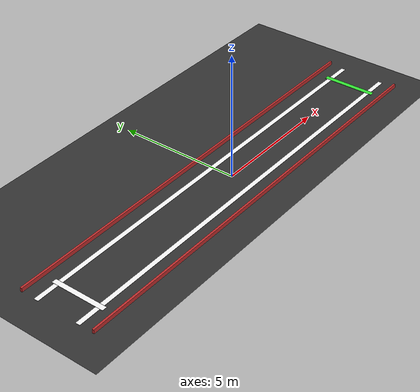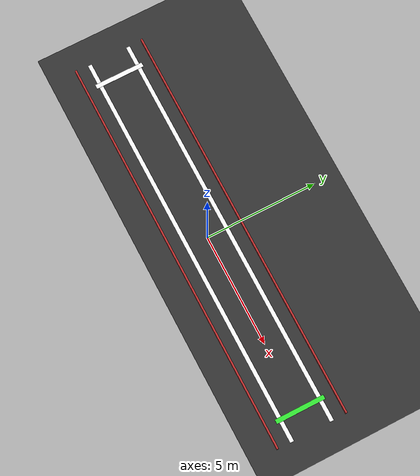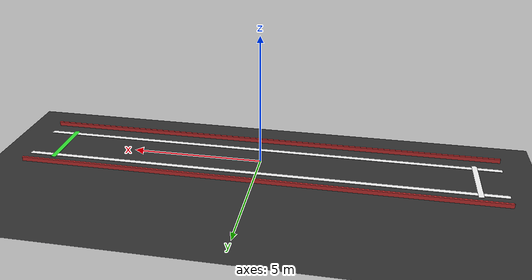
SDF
<?xml version="1.0" ?>
<sdf version='1.7'>
  <world name='lane_only_short'>
    <light name='sun' type='directional'>
      <cast_shadows>1</cast_shadows>
      <pose>0 0 10 0 -0 0</pose>
      <diffuse>0.8 0.8 0.8 1</diffuse>
      <specular>0.2 0.2 0.2 1</specular>
      <attenuation>
        <range>1000</range>
        <constant>0.9</constant>
        <linear>0.01</linear>
        <quadratic>0.001</quadratic>
      </attenuation>
      <direction>-0.35 0.1 -0.93</direction>
    </light>

    <gravity>0 0 -9.8</gravity>
    <magnetic_field>6e-06 2.3e-05 -4.2e-05</magnetic_field>
    <atmosphere type='adiabatic'/>
    <physics type='ode'>
      <max_step_size>0.001</max_step_size>
      <real_time_factor>1</real_time_factor>
      <real_time_update_rate>1000</real_time_update_rate>
    </physics>

    <scene>
      <ambient>0.45 0.45 0.45 1</ambient>
      <background>0.82 0.86 0.9 1</background>
      <shadows>1</shadows>
    </scene>

    <audio>
      <device>default</device>
    </audio>

    <wind/>

    <spherical_coordinates>
      <surface_model>EARTH_WGS84</surface_model>
      <latitude_deg>40.8069</latitude_deg>
      <longitude_deg>29.3579</longitude_deg>
      <elevation>0</elevation>
      <heading_deg>0</heading_deg>
    </spherical_coordinates>

    <model name='ground_plane'>
      <static>1</static>
      <link name='link'>
        <collision name='collision'>
          <geometry>
            <plane>
              <normal>0 0 1</normal>
              <size>60 40</size>
            </plane>
          </geometry>
        </collision>
        <visual name='visual'>
          <cast_shadows>0</cast_shadows>
          <geometry>
            <plane>
              <normal>0 0 1</normal>
              <size>60 40</size>
            </plane>
          </geometry>
          <material>
            <ambient>0.18 0.18 0.18 1</ambient>
            <diffuse>0.2 0.2 0.2 1</diffuse>
            <specular>0.02 0.02 0.02 1</specular>
          </material>
        </visual>
      </link>
    </model>

    <model name='lane_markings'>
      <static>1</static>
      <pose>0 0 0 0 0 0</pose>
      <link name='lane_lines'>
        <collision name='left_lane_collision'>
          <pose>0 0.9 0.005 0 0 0</pose>
          <geometry>
            <box>
              <size>18 0.12 0.01</size>
            </box>
          </geometry>
        </collision>
        <visual name='left_lane_visual'>
          <pose>0 0.9 0.005 0 0 0</pose>
          <geometry>
            <box>
              <size>18 0.18 0.01</size>
            </box>
          </geometry>
          <material>
            <ambient>0.98 0.98 0.98 1</ambient>
            <diffuse>0.98 0.98 0.98 1</diffuse>
          </material>
        </visual>

        <collision name='right_lane_collision'>
          <pose>0 -0.9 0.005 0 0 0</pose>
          <geometry>
            <box>
              <size>18 0.12 0.01</size>
            </box>
          </geometry>
        </collision>
        <visual name='right_lane_visual'>
          <pose>0 -0.9 0.005 0 0 0</pose>
          <geometry>
            <box>
              <size>18 0.18 0.01</size>
            </box>
          </geometry>
          <material>
            <ambient>0.98 0.98 0.98 1</ambient>
            <diffuse>0.98 0.98 0.98 1</diffuse>
          </material>
        </visual>

        <visual name='start_line_visual'>
          <pose>-8 0 0.006 0 0 0</pose>
          <geometry>
            <box>
              <size>0.2 2.2 0.01</size>
            </box>
          </geometry>
          <material>
            <ambient>0.98 0.98 0.98 1</ambient>
            <diffuse>0.98 0.98 0.98 1</diffuse>
          </material>
        </visual>

        <visual name='finish_line_visual'>
          <pose>8 0 0.006 0 0 0</pose>
          <geometry>
            <box>
              <size>0.2 2.2 0.01</size>
            </box>
          </geometry>
          <material>
            <ambient>0.2 0.9 0.2 1</ambient>
            <diffuse>0.2 0.9 0.2 1</diffuse>
          </material>
        </visual>
      </link>
    </model>

    <model name='lane_bounds'>
      <static>1</static>
      <link name='bounds'>
        <collision name='left_bound_collision'>
          <pose>0 1.55 0.08 0 0 0</pose>
          <geometry>
            <box>
              <size>18 0.08 0.16</size>
            </box>
          </geometry>
        </collision>
        <visual name='left_bound_visual'>
          <pose>0 1.55 0.08 0 0 0</pose>
          <geometry>
            <box>
              <size>18 0.08 0.16</size>
            </box>
          </geometry>
          <material>
            <ambient>0.75 0.18 0.18 1</ambient>
            <diffuse>0.75 0.18 0.18 1</diffuse>
          </material>
        </visual>

        <collision name='right_bound_collision'>
          <pose>0 -1.55 0.08 0 0 0</pose>
          <geometry>
            <box>
              <size>18 0.08 0.16</size>
            </box>
          </geometry>
        </collision>
        <visual name='right_bound_visual'>
          <pose>0 -1.55 0.08 0 0 0</pose>
          <geometry>
            <box>
              <size>18 0.08 0.16</size>
            </box>
          </geometry>
          <material>
            <ambient>0.75 0.18 0.18 1</ambient>
            <diffuse>0.75 0.18 0.18 1</diffuse>
          </material>
        </visual>
      </link>
    </model>

    <gui fullscreen='0'>
      <camera name='user_camera'>
        <pose>-1.2 -10.5 7.8 0 0.5 1.57</pose>
        <view_controller>orbit</view_controller>
        <projection_type>perspective</projection_type>
      </camera>
    </gui>
  </world>
</sdf>
